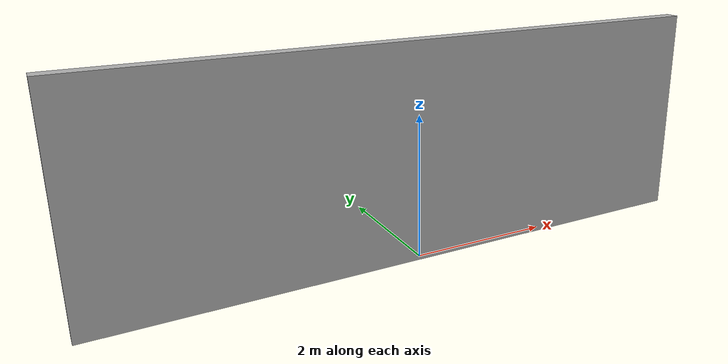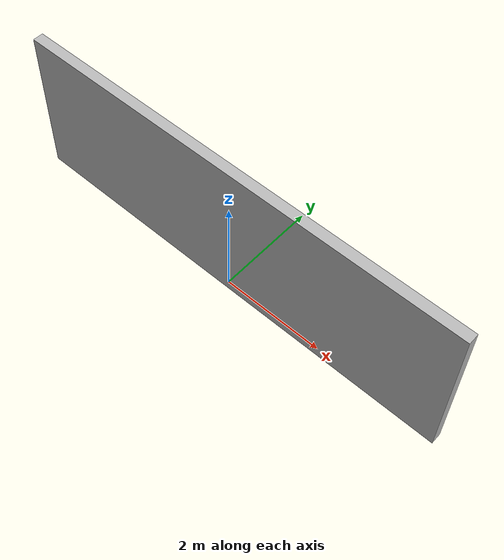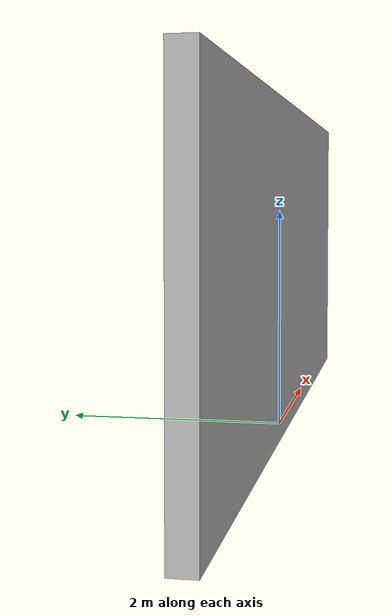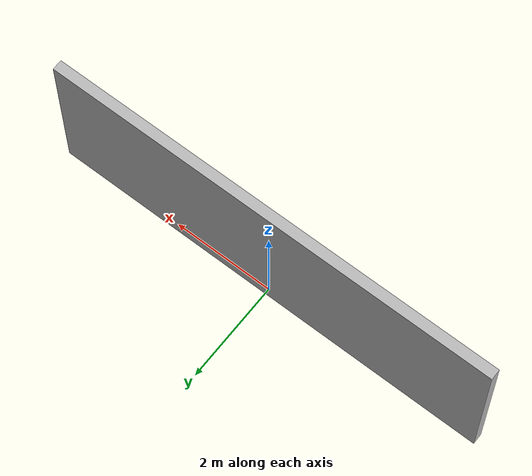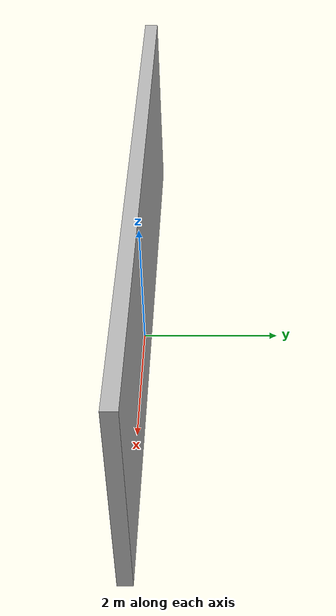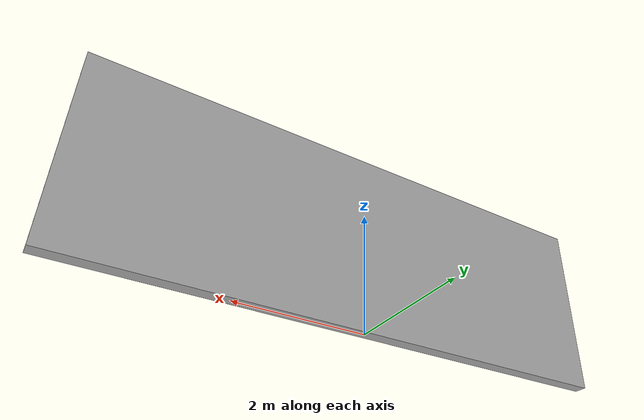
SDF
<?xml version="1.0" ?>
<sdf version="1.5">
  <model name="wall1">
    <static>true</static>
    <link name="chassis">
      <pose>0 0 1.5 0 0 0</pose>
      <collision name="collision">
        <geometry>
          <box>
            <size>8.8 0.2 3.0</size>
          </box>
        </geometry>
      </collision>
      <visual name="visual">
        <geometry>
          <mesh>
            <uri>model://wall1/meshes/simple_box.dae</uri>
            <scale>8.8 0.2 3.0</scale>
          </mesh>
        </geometry>
        <material>
          <script>
            <uri>model://wall1/materials/scripts</uri>
            <uri>model://wall1/materials/textures</uri>
            <name>wall1/Diffuse</name>
          </script>
        </material>
      </visual>
    </link>
  </model>
</sdf>
